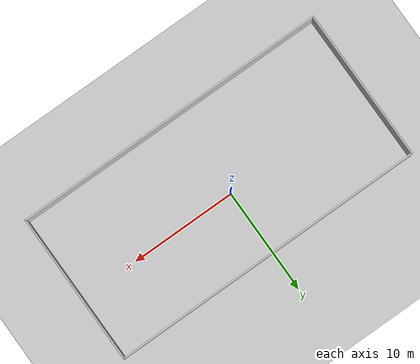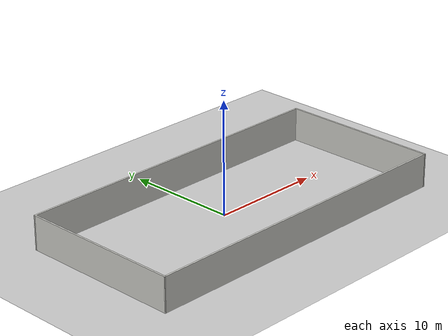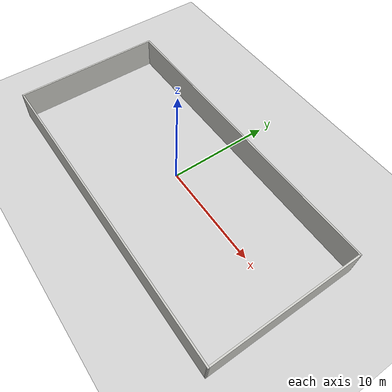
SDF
<sdf version="1.6">
 <world name="default">
  <light name="sun" type="directional">
   <pose>0 0 10 0 -0 0</pose>
   <diffuse>0.8 0.8 0.8 1</diffuse>
   <specular>0.2 0.2 0.2 1</specular>
   <attenuation>
    <range>1000</range>
    <constant>0.9</constant>
    <linear>0.01</linear>
    <quadratic>0.001</quadratic>
   </attenuation>
   <direction>-0.5 0.1 -0.9</direction>
  </light>
  <model name="ground_plane">
   <static>1</static>
   <link name="link">
    <collision name="collision">
     <geometry><plane><normal>0 0 1</normal><size>100 100</size></plane></geometry>
     <surface>
      <contact><collide_bitmask>65535</collide_bitmask></contact>
      <friction><ode><mu>100</mu><mu2>50</mu2></ode></friction>
     </surface>
    </collision>
    <visual name="visual">
     <cast_shadows>0</cast_shadows>
     <geometry><plane><normal>0 0 1</normal><size>100 100</size></plane></geometry>
     <material>
      <script><uri>file://media/materials/scripts/gazebo.material</uri><name>Gazebo/Grey</name></script>
     </material>
    </visual>
   </link>
  </model>
  <gravity>0 0 -9.8</gravity>
  <magnetic_field>6e-06 2.3e-05 -4.2e-05</magnetic_field>
  <atmosphere type="adiabatic"/>
  <physics name="default_physics" default="0" type="ode">
   <max_step_size>0.001</max_step_size>
   <real_time_factor>1</real_time_factor>
   <real_time_update_rate>1000</real_time_update_rate>
  </physics>
  <scene><ambient>0.4 0.4 0.4 1</ambient><background>0.7 0.7 0.7 1</background><shadows>1</shadows></scene>
  <spherical_coordinates>
   <surface_model>EARTH_WGS84</surface_model>
   <latitude_deg>0</latitude_deg>
   <longitude_deg>0</longitude_deg>
   <elevation>0</elevation>
   <heading_deg>0</heading_deg>
  </spherical_coordinates>
  <model name="Test_Layout">
   <pose>0.559774 -0.95129 0 0 -0 0</pose>
   <link name="Wall_0">
    <collision name="Wall_0_Collision">
     <geometry><box><size>30 0.15 3</size></box></geometry>
     <pose>0 0 1.5 0 -0 0</pose>
    </collision>
    <visual name="Wall_0_Visual">
     <pose>0 0 1.5 0 -0 0</pose>
     <geometry><box><size>30 0.15 3</size></box></geometry>
     <material>
      <script><uri>file://media/materials/scripts/gazebo.material</uri><name>Gazebo/CeilingTiled</name></script>
      <ambient>1 1 1 1</ambient>
     </material>
     <meta><layer>0</layer></meta>
    </visual>
    <pose>-0.015001 7.16 0 0 -0 0</pose>
   </link>
   <link name="Wall_2">
    <collision name="Wall_2_Collision">
     <geometry><box><size>14.469 0.15 3</size></box></geometry>
     <pose>0 0 1.5 0 -0 0</pose>
    </collision>
    <visual name="Wall_2_Visual">
     <pose>0 0 1.5 0 -0 0</pose>
     <geometry><box><size>14.469 0.15 3</size></box></geometry>
     <material>
      <script><uri>file://media/materials/scripts/gazebo.material</uri><name>Gazebo/CeilingTiled</name></script>
      <ambient>1 1 1 1</ambient>
     </material>
     <meta><layer>0</layer></meta>
    </visual>
    <pose>-14.925 0.0005 0 0 -0 -1.5687</pose>
   </link>
   <link name="Wall_4">
    <collision name="Wall_4_Collision">
     <geometry><box><size>30 0.15 3</size></box></geometry>
     <pose>0 0 1.5 0 -0 0</pose>
    </collision>
    <visual name="Wall_4_Visual">
     <pose>0 0 1.5 0 -0 0</pose>
     <geometry><box><size>30 0.15 3</size></box></geometry>
     <material>
      <script><uri>file://media/materials/scripts/gazebo.material</uri><name>Gazebo/CeilingTiled</name></script>
      <ambient>1 1 1 1</ambient>
     </material>
     <meta><layer>0</layer></meta>
    </visual>
    <pose>0.014999 -7.1595 0 0 -0 -3.4e-05</pose>
   </link>
   <link name="Wall_5">
    <collision name="Wall_5_Collision">
     <geometry><box><size>14.47 0.15 3</size></box></geometry>
     <pose>0 0 1.5 0 -0 0</pose>
    </collision>
    <visual name="Wall_5_Visual">
     <pose>0 0 1.5 0 -0 0</pose>
     <geometry><box><size>14.47 0.15 3</size></box></geometry>
     <material>
      <script><uri>file://media/materials/scripts/gazebo.material</uri><name>Gazebo/CeilingTiled</name></script>
      <ambient>1 1 1 1</ambient>
     </material>
     <meta><layer>0</layer></meta>
    </visual>
    <pose>14.925 -0 0 0 -0 1.57289</pose>
   </link>
   <static>1</static>
  </model>
 </world>
</sdf>
